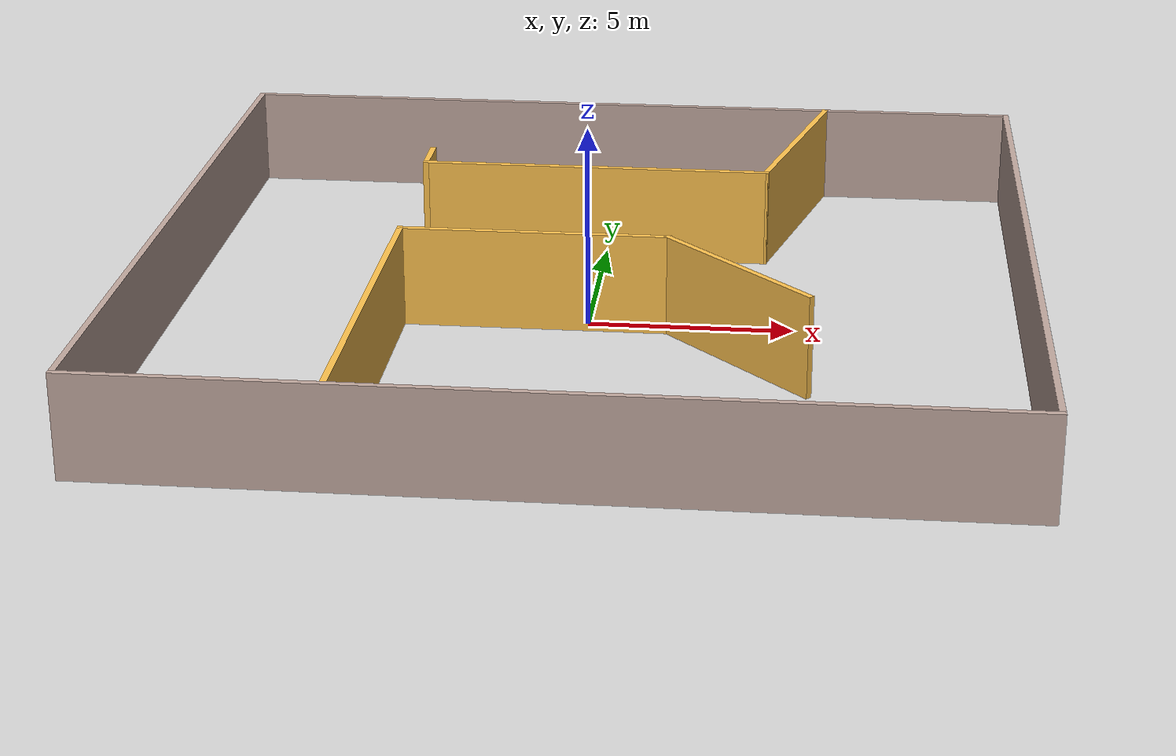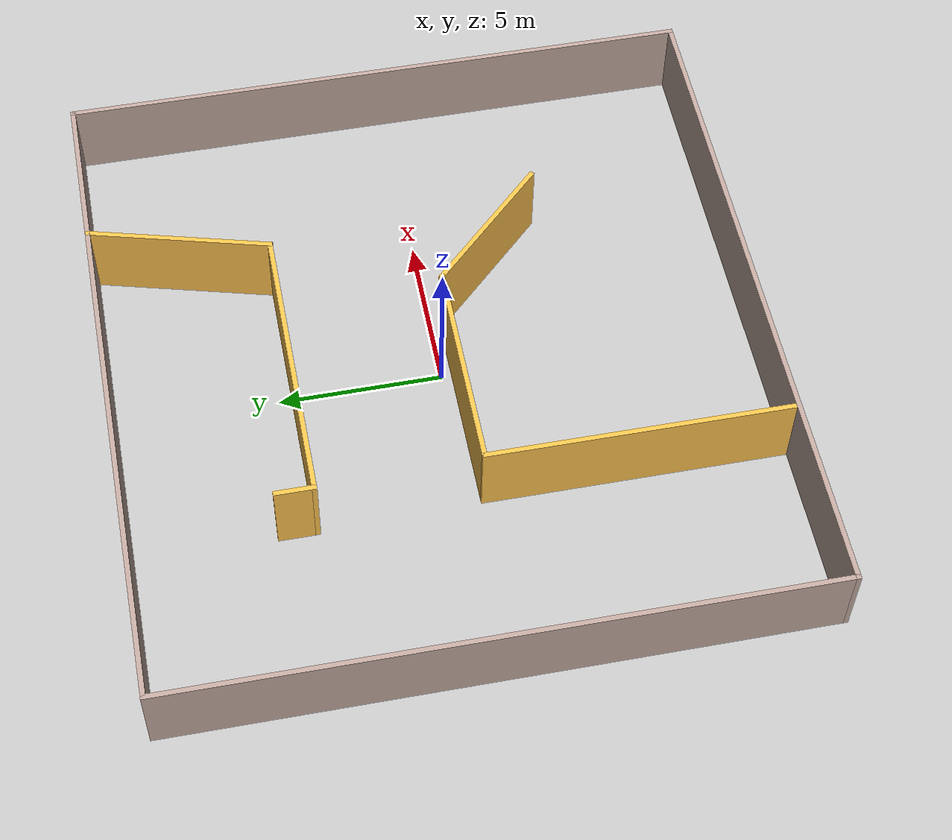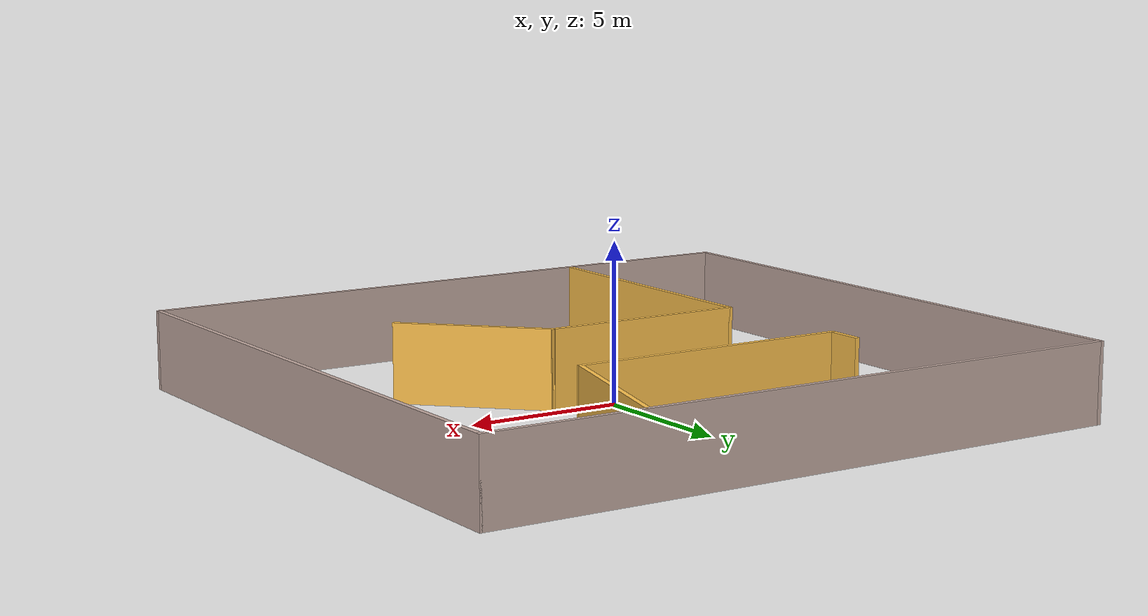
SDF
<?xml version='1.0'?>
<sdf version='1.6'>
  <model name='usar'>
    <pose frame=''>0.132 0.177 0 0 -0 0</pose>
    <link name='Wall_0'>
      <collision name='Wall_0_Collision'>
        <geometry>
          <box>
            <size>21 0.15 2.5</size>
          </box>
        </geometry>
        <pose frame=''>0 0 1.25 0 -0 0</pose>
      </collision>
      <visual name='Wall_0_Visual'>
        <pose frame=''>0 0 1.25 0 -0 0</pose>
        <geometry>
          <box>
            <size>21 0.15 2.5</size>
          </box>
        </geometry>
        <material>
          <script>
            <uri>file://media/materials/scripts/gazebo.material</uri>
            <name>Gazebo/Grey</name>
          </script>
          <ambient>0.760784 0.662745 0.627451 1</ambient>
        </material>
        <meta>
          <layer>0</layer>
        </meta>
      </visual>
      <pose frame=''>0 -9.8 0 0 -0 0</pose>
    </link>
    <link name='Wall_10'>
      <collision name='Wall_10_Collision'>
        <geometry>
          <box>
            <size>5.75 0.15 2.5</size>
          </box>
        </geometry>
        <pose frame=''>0 0 1.25 0 -0 0</pose>
      </collision>
      <visual name='Wall_10_Visual'>
        <pose frame=''>0 0 1.25 0 -0 0</pose>
        <geometry>
          <box>
            <size>5.75 0.15 2.5</size>
          </box>
        </geometry>
        <material>
          <script>
            <uri>file://media/materials/scripts/gazebo.material</uri>
            <name>Gazebo/Grey</name>
          </script>
          <ambient>1 0.764706 0.305882 1</ambient>
        </material>
        <meta>
          <layer>0</layer>
        </meta>
      </visual>
      <pose frame=''>4.736 7.0785 0 0 -0 -1.83271</pose>
    </link>
    <link name='Wall_11'>
      <collision name='Wall_11_Collision'>
        <geometry>
          <box>
            <size>9 0.15 2.5</size>
          </box>
        </geometry>
        <pose frame=''>0 0 1.25 0 -0 0</pose>
      </collision>
      <visual name='Wall_11_Visual'>
        <pose frame=''>0 0 1.25 0 -0 0</pose>
        <geometry>
          <box>
            <size>9 0.15 2.5</size>
          </box>
        </geometry>
        <material>
          <script>
            <uri>file://media/materials/scripts/gazebo.material</uri>
            <name>Gazebo/Grey</name>
          </script>
          <ambient>1 0.764706 0.305882 1</ambient>
        </material>
        <meta>
          <layer>0</layer>
        </meta>
      </visual>
      <pose frame=''>-0.414 4.374 0 0 -0 3.14159</pose>
    </link>
    <link name='Wall_12'>
      <collision name='Wall_12_Collision'>
        <geometry>
          <box>
            <size>1.25 0.15 2.5</size>
          </box>
        </geometry>
        <pose frame=''>0 0 1.25 0 -0 0</pose>
      </collision>
      <visual name='Wall_12_Visual'>
        <pose frame=''>0 0 1.25 0 -0 0</pose>
        <geometry>
          <box>
            <size>1.25 0.15 2.5</size>
          </box>
        </geometry>
        <material>
          <script>
            <uri>file://media/materials/scripts/gazebo.material</uri>
            <name>Gazebo/Grey</name>
          </script>
          <ambient>1 0.764706 0.305882 1</ambient>
        </material>
        <meta>
          <layer>0</layer>
        </meta>
      </visual>
      <pose frame=''>-4.839 4.924 0 0 -0 1.5708</pose>
    </link>
    <link name='Wall_2'>
      <collision name='Wall_2_Collision'>
        <geometry>
          <box>
            <size>19.75 0.15 2.5</size>
          </box>
        </geometry>
        <pose frame=''>0 0 1.25 0 -0 0</pose>
      </collision>
      <visual name='Wall_2_Visual'>
        <pose frame=''>0 0 1.25 0 -0 0</pose>
        <geometry>
          <box>
            <size>19.75 0.15 2.5</size>
          </box>
        </geometry>
        <material>
          <script>
            <uri>file://media/materials/scripts/gazebo.material</uri>
            <name>Gazebo/Grey</name>
          </script>
          <ambient>0.760784 0.662745 0.627451 1</ambient>
        </material>
        <meta>
          <layer>0</layer>
        </meta>
      </visual>
      <pose frame=''>-10.425 -0 0 0 -0 1.5708</pose>
    </link>
    <link name='Wall_3'>
      <collision name='Wall_3_Collision'>
        <geometry>
          <box>
            <size>21 0.15 2.5</size>
          </box>
        </geometry>
        <pose frame=''>0 0 1.25 0 -0 0</pose>
      </collision>
      <visual name='Wall_3_Visual'>
        <pose frame=''>0 0 1.25 0 -0 0</pose>
        <geometry>
          <box>
            <size>21 0.15 2.5</size>
          </box>
        </geometry>
        <material>
          <script>
            <uri>file://media/materials/scripts/gazebo.material</uri>
            <name>Gazebo/Grey</name>
          </script>
          <ambient>0.760784 0.662745 0.627451 1</ambient>
        </material>
        <meta>
          <layer>0</layer>
        </meta>
      </visual>
      <pose frame=''>0 9.8 0 0 -0 0</pose>
    </link>
    <link name='Wall_4'>
      <collision name='Wall_4_Collision'>
        <geometry>
          <box>
            <size>19.75 0.15 2.5</size>
          </box>
        </geometry>
        <pose frame=''>0 0 1.25 0 -0 0</pose>
      </collision>
      <visual name='Wall_4_Visual'>
        <pose frame=''>0 0 1.25 0 -0 0</pose>
        <geometry>
          <box>
            <size>19.75 0.15 2.5</size>
          </box>
        </geometry>
        <material>
          <script>
            <uri>file://media/materials/scripts/gazebo.material</uri>
            <name>Gazebo/Grey</name>
          </script>
          <ambient>0.760784 0.662745 0.627451 1</ambient>
        </material>
        <meta>
          <layer>0</layer>
        </meta>
      </visual>
      <pose frame=''>10.425 -0 0 0 -0 -1.5708</pose>
    </link>
    <link name='Wall_6'>
      <collision name='Wall_6_Collision'>
        <geometry>
          <box>
            <size>9.25 0.15 2.5</size>
          </box>
        </geometry>
        <pose frame=''>0 0 1.25 0 -0 0</pose>
      </collision>
      <visual name='Wall_6_Visual'>
        <pose frame=''>0 0 1.25 0 -0 0</pose>
        <geometry>
          <box>
            <size>9.25 0.15 2.5</size>
          </box>
        </geometry>
        <material>
          <script>
            <uri>file://media/materials/scripts/gazebo.material</uri>
            <name>Gazebo/Grey</name>
          </script>
          <ambient>1 0.764706 0.305882 1</ambient>
        </material>
        <meta>
          <layer>0</layer>
        </meta>
      </visual>
      <pose frame=''>-4.671 -5.097 0 0 -0 1.5708</pose>
    </link>
    <link name='Wall_7'>
      <collision name='Wall_7_Collision'>
        <geometry>
          <box>
            <size>6.65748 0.15 2.5</size>
          </box>
        </geometry>
        <pose frame=''>0 0 1.25 0 -0 0</pose>
      </collision>
      <visual name='Wall_7_Visual'>
        <pose frame=''>0 0 1.25 0 -0 0</pose>
        <geometry>
          <box>
            <size>6.65748 0.15 2.5</size>
          </box>
        </geometry>
        <material>
          <script>
            <uri>file://media/materials/scripts/gazebo.material</uri>
            <name>Gazebo/Grey</name>
          </script>
          <ambient>1 0.764706 0.305882 1</ambient>
        </material>
        <meta>
          <layer>0</layer>
        </meta>
      </visual>
      <pose frame=''>-1.417 -0.547 0 0 -0 0</pose>
    </link>
    <link name='Wall_8'>
      <collision name='Wall_8_Collision'>
        <geometry>
          <box>
            <size>5.03243 0.15 2.5</size>
          </box>
        </geometry>
        <pose frame=''>0 0 1.25 0 -0 0</pose>
      </collision>
      <visual name='Wall_8_Visual'>
        <pose frame=''>0 0 1.25 0 -0 0</pose>
        <geometry>
          <box>
            <size>5.03243 0.15 2.5</size>
          </box>
        </geometry>
        <material>
          <script>
            <uri>file://media/materials/scripts/gazebo.material</uri>
            <name>Gazebo/Grey</name>
          </script>
          <ambient>1 0.764706 0.305882 1</ambient>
        </material>
        <meta>
          <layer>0</layer>
        </meta>
      </visual>
      <pose frame=''>3.5515 -2.2845 0 0 -0 -0.792061</pose>
    </link>
    <static>1</static>
  </model>
</sdf>
